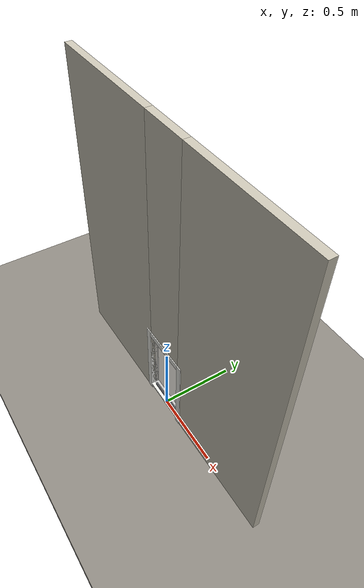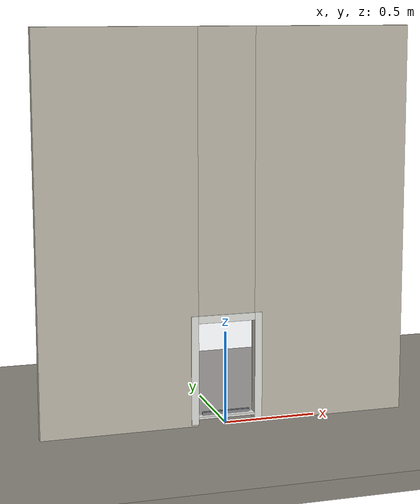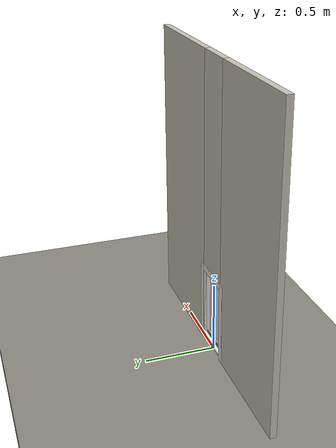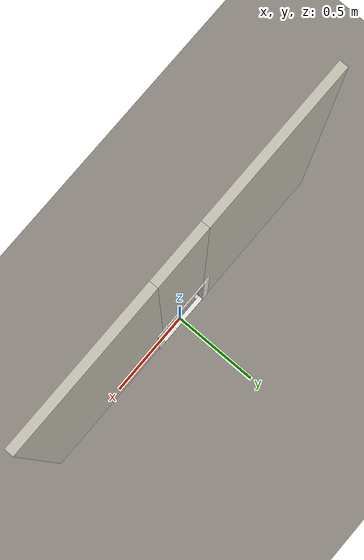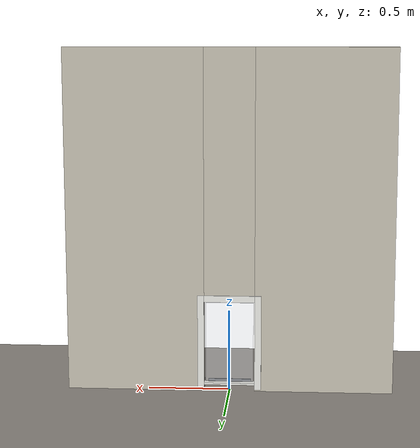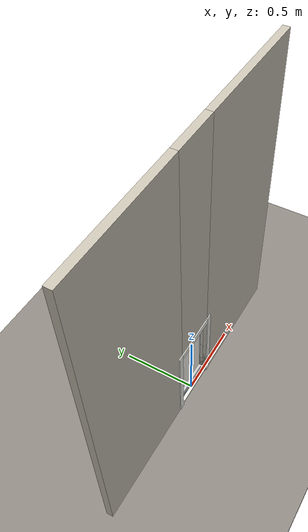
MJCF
<?xml version="1.0" ?>
<mujoco model="db0045_pet_door_full">
  <compiler angle="radian" meshdir="../../hardware" texturedir="../../textures" autolimits="true" inertiafromgeom="false"/>
  <option timestep="0.002" integrator="implicitfast" cone="elliptic" impratio="10" noslip_iterations="3">
    <flag multiccd="enable"/>
  </option>
  <size memory="16M"/>
  <default>
    <geom condim="4" solref="0.005 1" solimp="0.95 0.99 0.001"/>
    <joint solreflimit="0.005 1" solimplimit="0.95 0.99 0.001"/>
    <tendon solreflimit="0.005 1"/>
    <equality solref="0.002 1"/>
  </default>
  <visual>
    <headlight ambient="0.4 0.4 0.4" diffuse="0.7 0.7 0.7" specular="0.2 0.2 0.2"/>
    <quality shadowsize="4096"/>
    <map znear="0.01" zfar="60"/>
  </visual>
  <asset>
    <material name="mat_floor" rgba="0.55 0.53 0.5 1" specular="0.2" shininess="0.15" reflectance="0"/>
    <material name="mat_wall" rgba="0.78 0.76 0.7 1" specular="0.2" shininess="0.1" reflectance="0"/>
    <material name="mat_frame" rgba="0.92 0.92 0.9 1" specular="0.2" shininess="0.6" reflectance="0"/>
    <material name="mat_flap" rgba="0.9 0.92 0.95 0.3" specular="0.2" shininess="0.9" reflectance="0.1"/>
    <material name="mat_magnet" rgba="0.55 0.56 0.58 1" specular="0.8" shininess="0.55" reflectance="0.4"/>
    <texture name="skybox" type="skybox" builtin="gradient" rgb1="0.6 0.7 0.85" rgb2="0.9 0.92 0.95" width="256" height="256"/>
  </asset>
  <worldbody>
    <light name="sun" pos="1.5 -2.5 4" dir="-0.3 0.5 -0.8" directional="true" diffuse="0.8 0.8 0.8" specular="0.3 0.3 0.3" castshadow="true"/>
    <light name="fill" pos="-1.5 2.5 3" dir="0.3 -0.5 -0.7" directional="true" diffuse="0.35 0.35 0.4" castshadow="false"/>
    <camera name="robot_view" pos="0 -1.875 0.78" xyaxes="1 0 0 0 0.26963 0.962964" fovy="52"/>
    <camera name="far_view" pos="0 1.875 0.78" xyaxes="-1 0 0 0 -0.26963 0.962964" fovy="52"/>
    <camera name="iso" pos="1.425 -1.575 1.08" xyaxes="0.741536 0.670913 0 -0.242917 0.268487 0.932151" fovy="46"/>
    <camera name="detail_handle" pos="0.48 -0.8 0.585" xyaxes="0.97561 0.219512 0 -0.070934 0.315262 0.94635" fovy="38"/>
    <geom name="floor" type="box" size="6 6 0.05" pos="0 0 -0.05" material="mat_floor" group="0" contype="1" conaffinity="1" friction="0.8 0.005 0.0001" density="2400"/>
    <geom name="wall_left" type="box" size="0.4225 0.022 1.05" pos="-0.5775 0 1.05" material="mat_wall" group="0" contype="1" conaffinity="1" friction="0.6 0.005 0.0001" density="800"/>
    <geom name="wall_right" type="box" size="0.4225 0.022 1.05" pos="0.5775 0 1.05" material="mat_wall" group="0" contype="1" conaffinity="1" friction="0.6 0.005 0.0001" density="800"/>
    <geom name="wall_header" type="box" size="0.155 0.022 0.77" pos="0 0 1.33" material="mat_wall" group="0" contype="1" conaffinity="1" friction="0.6 0.005 0.0001" density="800"/>
    <geom name="pet_frame_l" type="box" size="0.02 0.028 0.295" pos="-0.175 0 0.305" material="mat_frame" group="0" contype="1" conaffinity="1" friction="0.6 0.005 0.0001" density="1200"/>
    <geom name="pet_frame_r" type="box" size="0.02 0.028 0.295" pos="0.175 0 0.305" material="mat_frame" group="0" contype="1" conaffinity="1" friction="0.6 0.005 0.0001" density="1200"/>
    <geom name="pet_frame_t" type="box" size="0.155 0.028 0.02" pos="0 0 0.58" material="mat_frame" group="0" contype="1" conaffinity="1" friction="0.6 0.005 0.0001" density="1200"/>
    <geom name="pet_sill" type="box" size="0.155 0.028 0.006" pos="0 0 0.044" material="mat_frame" group="0" contype="1" conaffinity="1" friction="0.6 0.005 0.0001" density="1200"/>
    <geom name="sill_magnet" type="box" size="0.13 0.002 0.008" pos="0 -0.0055 0.06" material="mat_magnet" group="1" contype="0" conaffinity="0" density="7850"/>
    <site name="approach_point" pos="0 -1 0" quat="1 0 0 0" size="0.05" rgba="0.2 0.9 0.2 0.5" group="4"/>
    <site name="goal_point" pos="0 1 0" quat="1 0 0 0" size="0.05" rgba="0.2 0.9 0.2 0.5" group="4"/>
    <site name="door_plane_center" pos="0 0 0.305" quat="1 0 0 0" size="0.02" rgba="0.2 0.9 0.2 0.5" group="4"/>
    <body name="flap" pos="0 0 0.5535">
      <inertial pos="0 0 -0.297973" mass="0.915" quat="-0.5 0.5 0.5 0.5" diaginertia="0.006305927 0.023444367 0.02974575"/>
      <joint name="flap_hinge" type="hinge" axis="1 0 0" limited="true" range="-1.308997 1.308997" damping="0.010731" frictionloss="0.04683" armature="0.02"/>
      <geom name="flap_geom" type="box" size="0.147 0.0025 0.248" pos="0 0 -0.25" material="mat_flap" group="0" contype="1" conaffinity="1" friction="0.6 0.005 0.0001" density="1"/>
      <geom name="flap_magnet" type="box" size="0.13 0.0035 0.008" pos="0 0 -0.49" material="mat_magnet" group="1" contype="0" conaffinity="0" density="7850"/>
    </body>
  </worldbody>
  <sensor>
    <jointpos name="flap_hinge_pos" joint="flap_hinge"/>
    <jointvel name="flap_hinge_vel" joint="flap_hinge"/>
  </sensor>
</mujoco>
